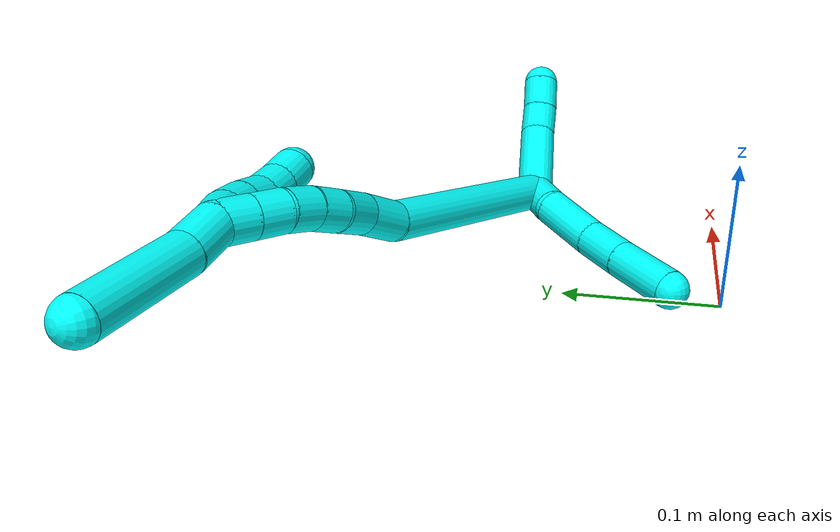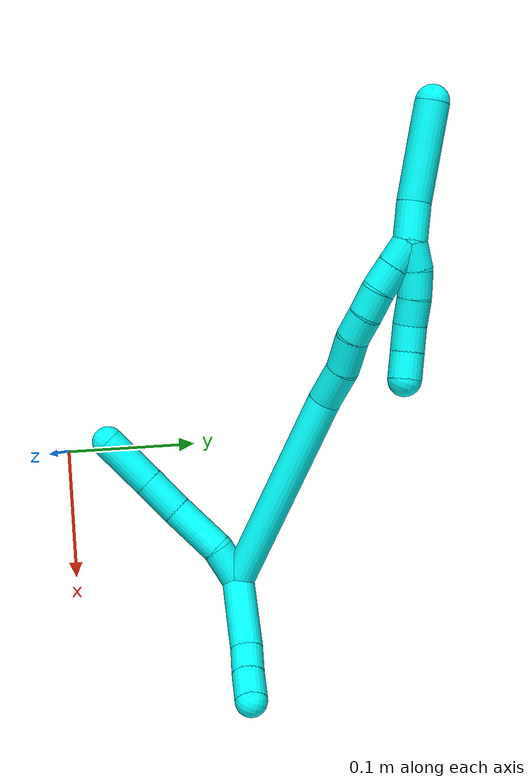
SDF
<sdf version="1.7">
 <world name="default">
  <model name="3">
   <static>0</static>
   <link name="3">
    <collision name="collision-cylinder-e_1_2_8">
     <pose>-0.011018 -0.004792 0.008565 0.510111 -0.843128 -0.232795</pose>
     <geometry><cylinder><radius>0.0125</radius><length>0.02951</length></cylinder></geometry>
     <surface>
      <friction><ode><mu>1.16</mu><mu2>1.16</mu2><slip1>0</slip1><slip2>0</slip2></ode></friction>
      <contact><ode><kp>1e+06</kp><kd>1</kd><max_vel>0</max_vel><min_depth>0.001</min_depth></ode></contact>
     </surface>
    </collision>
    <visual name="visual-cylinder-e_1_2_8">
     <pose>-0.011018 -0.004792 0.008565 0.510111 -0.843128 -0.232795</pose>
     <geometry><cylinder><radius>0.0125</radius><length>0.02951</length></cylinder></geometry>
     <material><ambient>0.003922 1 0.996078 1</ambient></material>
    </visual>
    <collision name="collision-cylinder-e_2_8_9">
     <pose>-0.041834 -0.015742 0.024216 0.715363 -1.128 -0.464306</pose>
     <geometry><cylinder><radius>0.0125</radius><length>0.043824</length></cylinder></geometry>
     <surface>
      <friction><ode><mu>1.16</mu><mu2>1.16</mu2><slip1>0</slip1><slip2>0</slip2></ode></friction>
      <contact><ode><kp>1e+06</kp><kd>1</kd><max_vel>0</max_vel><min_depth>0.001</min_depth></ode></contact>
     </surface>
    </collision>
    <visual name="visual-cylinder-e_2_8_9">
     <pose>-0.041834 -0.015742 0.024216 0.715363 -1.128 -0.464306</pose>
     <geometry><cylinder><radius>0.0125</radius><length>0.043824</length></cylinder></geometry>
     <material><ambient>0.003922 1 0.996078 1</ambient></material>
    </visual>
    <collision name="collision-cylinder-e_3_9_10">
     <pose>-0.074989 -0.027713 0.037498 0.753598 -1.00429 -0.427906</pose>
     <geometry><cylinder><radius>0.0125</radius><length>0.031659</length></cylinder></geometry>
     <surface>
      <friction><ode><mu>1.16</mu><mu2>1.16</mu2><slip1>0</slip1><slip2>0</slip2></ode></friction>
      <contact><ode><kp>1e+06</kp><kd>1</kd><max_vel>0</max_vel><min_depth>0.001</min_depth></ode></contact>
     </surface>
    </collision>
    <visual name="visual-cylinder-e_3_9_10">
     <pose>-0.074989 -0.027713 0.037498 0.753598 -1.00429 -0.427906</pose>
     <geometry><cylinder><radius>0.0125</radius><length>0.031659</length></cylinder></geometry>
     <material><ambient>0.003922 1 0.996078 1</ambient></material>
    </visual>
    <collision name="collision-cylinder-e_4_10_6">
     <pose>-0.107113 -0.042365 0.052417 0.791939 -0.986191 -0.441959</pose>
     <geometry><cylinder><radius>0.0125</radius><length>0.045008</length></cylinder></geometry>
     <surface>
      <friction><ode><mu>1.16</mu><mu2>1.16</mu2><slip1>0</slip1><slip2>0</slip2></ode></friction>
      <contact><ode><kp>1e+06</kp><kd>1</kd><max_vel>0</max_vel><min_depth>0.001</min_depth></ode></contact>
     </surface>
    </collision>
    <visual name="visual-cylinder-e_4_10_6">
     <pose>-0.107113 -0.042365 0.052417 0.791939 -0.986191 -0.441959</pose>
     <geometry><cylinder><radius>0.0125</radius><length>0.045008</length></cylinder></geometry>
     <material><ambient>0.003922 1 0.996078 1</ambient></material>
    </visual>
    <collision name="collision-cylinder-e_1_2_11">
     <pose>0.018737 -0.008293 -0.018655 2.72327 0.742558 2.14329</pose>
     <geometry><cylinder><radius>0.0125</radius><length>0.055421</length></cylinder></geometry>
     <surface>
      <friction><ode><mu>1.16</mu><mu2>1.16</mu2><slip1>0</slip1><slip2>0</slip2></ode></friction>
      <contact><ode><kp>1e+06</kp><kd>1</kd><max_vel>0</max_vel><min_depth>0.001</min_depth></ode></contact>
     </surface>
    </collision>
    <visual name="visual-cylinder-e_1_2_11">
     <pose>0.018737 -0.008293 -0.018655 2.72327 0.742558 2.14329</pose>
     <geometry><cylinder><radius>0.0125</radius><length>0.055421</length></cylinder></geometry>
     <material><ambient>0.003922 1 0.996078 1</ambient></material>
    </visual>
    <collision name="collision-cylinder-e_2_11_12">
     <pose>0.044776 -0.022267 -0.042975 2.3549 0.738422 1.50095</pose>
     <geometry><cylinder><radius>0.0125</radius><length>0.021696</length></cylinder></geometry>
     <surface>
      <friction><ode><mu>1.16</mu><mu2>1.16</mu2><slip1>0</slip1><slip2>0</slip2></ode></friction>
      <contact><ode><kp>1e+06</kp><kd>1</kd><max_vel>0</max_vel><min_depth>0.001</min_depth></ode></contact>
     </surface>
    </collision>
    <visual name="visual-cylinder-e_2_11_12">
     <pose>0.044776 -0.022267 -0.042975 2.3549 0.738422 1.50095</pose>
     <geometry><cylinder><radius>0.0125</radius><length>0.021696</length></cylinder></geometry>
     <material><ambient>0.003922 1 0.996078 1</ambient></material>
    </visual>
    <collision name="collision-cylinder-e_3_12_5">
     <pose>0.060221 -0.033959 -0.053976 2.29666 0.791867 1.49815</pose>
     <geometry><cylinder><radius>0.0125</radius><length>0.022883</length></cylinder></geometry>
     <surface>
      <friction><ode><mu>1.16</mu><mu2>1.16</mu2><slip1>0</slip1><slip2>0</slip2></ode></friction>
      <contact><ode><kp>1e+06</kp><kd>1</kd><max_vel>0</max_vel><min_depth>0.001</min_depth></ode></contact>
     </surface>
    </collision>
    <visual name="visual-cylinder-e_3_12_5">
     <pose>0.060221 -0.033959 -0.053976 2.29666 0.791867 1.49815</pose>
     <geometry><cylinder><radius>0.0125</radius><length>0.022883</length></cylinder></geometry>
     <material><ambient>0.003922 1 0.996078 1</ambient></material>
    </visual>
    <collision name="collision-cylinder-e_1_2_13">
     <pose>0.005587 -0.000111 0.080497 0.001375 0.069296 4.8e-05</pose>
     <geometry><cylinder><radius>0.0125</radius><length>0.161381</length></cylinder></geometry>
     <surface>
      <friction><ode><mu>1.16</mu><mu2>1.16</mu2><slip1>0</slip1><slip2>0</slip2></ode></friction>
      <contact><ode><kp>1e+06</kp><kd>1</kd><max_vel>0</max_vel><min_depth>0.001</min_depth></ode></contact>
     </surface>
    </collision>
    <visual name="visual-cylinder-e_1_2_13">
     <pose>0.005587 -0.000111 0.080497 0.001375 0.069296 4.8e-05</pose>
     <geometry><cylinder><radius>0.0125</radius><length>0.161381</length></cylinder></geometry>
     <material><ambient>0.003922 1 0.996078 1</ambient></material>
    </visual>
    <collision name="collision-cylinder-e_2_13_14">
     <pose>0.014938 -0.003526 0.175442 0.224833 0.24867 0.028217</pose>
     <geometry><cylinder><radius>0.0125</radius><length>0.030583</length></cylinder></geometry>
     <surface>
      <friction><ode><mu>1.16</mu><mu2>1.16</mu2><slip1>0</slip1><slip2>0</slip2></ode></friction>
      <contact><ode><kp>1e+06</kp><kd>1</kd><max_vel>0</max_vel><min_depth>0.001</min_depth></ode></contact>
     </surface>
    </collision>
    <visual name="visual-cylinder-e_2_13_14">
     <pose>0.014938 -0.003526 0.175442 0.224833 0.24867 0.028217</pose>
     <geometry><cylinder><radius>0.0125</radius><length>0.030583</length></cylinder></geometry>
     <material><ambient>0.003922 1 0.996078 1</ambient></material>
    </visual>
    <collision name="collision-cylinder-e_3_14_15">
     <pose>0.019455 -0.010572 0.202802 0.282062 0.05598 0.00795</pose>
     <geometry><cylinder><radius>0.0125</radius><length>0.02693</length></cylinder></geometry>
     <surface>
      <friction><ode><mu>1.16</mu><mu2>1.16</mu2><slip1>0</slip1><slip2>0</slip2></ode></friction>
      <contact><ode><kp>1e+06</kp><kd>1</kd><max_vel>0</max_vel><min_depth>0.001</min_depth></ode></contact>
     </surface>
    </collision>
    <visual name="visual-cylinder-e_3_14_15">
     <pose>0.019455 -0.010572 0.202802 0.282062 0.05598 0.00795</pose>
     <geometry><cylinder><radius>0.0125</radius><length>0.02693</length></cylinder></geometry>
     <material><ambient>0.003922 1 0.996078 1</ambient></material>
    </visual>
    <collision name="collision-cylinder-e_4_15_16">
     <pose>0.022278 -0.01579 0.225562 0.148802 0.205017 0.015335</pose>
     <geometry><cylinder><radius>0.0125</radius><length>0.020339</length></cylinder></geometry>
     <surface>
      <friction><ode><mu>1.16</mu><mu2>1.16</mu2><slip1>0</slip1><slip2>0</slip2></ode></friction>
      <contact><ode><kp>1e+06</kp><kd>1</kd><max_vel>0</max_vel><min_depth>0.001</min_depth></ode></contact>
     </surface>
    </collision>
    <visual name="visual-cylinder-e_4_15_16">
     <pose>0.022278 -0.01579 0.225562 0.148802 0.205017 0.015335</pose>
     <geometry><cylinder><radius>0.0125</radius><length>0.020339</length></cylinder></geometry>
     <material><ambient>0.003922 1 0.996078 1</ambient></material>
    </visual>
    <collision name="collision-cylinder-e_5_16_17">
     <pose>0.025563 -0.017749 0.245612 0.04728 0.118336 0.002801</pose>
     <geometry><cylinder><radius>0.0125</radius><length>0.020574</length></cylinder></geometry>
     <surface>
      <friction><ode><mu>1.16</mu><mu2>1.16</mu2><slip1>0</slip1><slip2>0</slip2></ode></friction>
      <contact><ode><kp>1e+06</kp><kd>1</kd><max_vel>0</max_vel><min_depth>0.001</min_depth></ode></contact>
     </surface>
    </collision>
    <visual name="visual-cylinder-e_5_16_17">
     <pose>0.025563 -0.017749 0.245612 0.04728 0.118336 0.002801</pose>
     <geometry><cylinder><radius>0.0125</radius><length>0.020574</length></cylinder></geometry>
     <material><ambient>0.003922 1 0.996078 1</ambient></material>
    </visual>
    <collision name="collision-cylinder-e_6_17_18">
     <pose>0.028284 -0.016835 0.265633 -0.141304 0.15075 -0.010689</pose>
     <geometry><cylinder><radius>0.0125</radius><length>0.020059</length></cylinder></geometry>
     <surface>
      <friction><ode><mu>1.16</mu><mu2>1.16</mu2><slip1>0</slip1><slip2>0</slip2></ode></friction>
      <contact><ode><kp>1e+06</kp><kd>1</kd><max_vel>0</max_vel><min_depth>0.001</min_depth></ode></contact>
     </surface>
    </collision>
    <visual name="visual-cylinder-e_6_17_18">
     <pose>0.028284 -0.016835 0.265633 -0.141304 0.15075 -0.010689</pose>
     <geometry><cylinder><radius>0.0125</radius><length>0.020059</length></cylinder></geometry>
     <material><ambient>0.003922 1 0.996078 1</ambient></material>
    </visual>
    <collision name="collision-cylinder-e_7_18_1">
     <pose>0.031446 -0.013967 0.28527 -0.148758 0.165295 -0.012345</pose>
     <geometry><cylinder><radius>0.0125</radius><length>0.020133</length></cylinder></geometry>
     <surface>
      <friction><ode><mu>1.16</mu><mu2>1.16</mu2><slip1>0</slip1><slip2>0</slip2></ode></friction>
      <contact><ode><kp>1e+06</kp><kd>1</kd><max_vel>0</max_vel><min_depth>0.001</min_depth></ode></contact>
     </surface>
    </collision>
    <visual name="visual-cylinder-e_7_18_1">
     <pose>0.031446 -0.013967 0.28527 -0.148758 0.165295 -0.012345</pose>
     <geometry><cylinder><radius>0.0125</radius><length>0.020133</length></cylinder></geometry>
     <material><ambient>0.003922 1 0.996078 1</ambient></material>
    </visual>
    <collision name="collision-cylinder-e_1_1_19">
     <pose>0.027941 -0.011183 0.308417 -0.098147 -0.367876 0.018273</pose>
     <geometry><cylinder><radius>0.0125</radius><length>0.028705</length></cylinder></geometry>
     <surface>
      <friction><ode><mu>1.16</mu><mu2>1.16</mu2><slip1>0</slip1><slip2>0</slip2></ode></friction>
      <contact><ode><kp>1e+06</kp><kd>1</kd><max_vel>0</max_vel><min_depth>0.001</min_depth></ode></contact>
     </surface>
    </collision>
    <visual name="visual-cylinder-e_1_1_19">
     <pose>0.027941 -0.011183 0.308417 -0.098147 -0.367876 0.018273</pose>
     <geometry><cylinder><radius>0.0125</radius><length>0.028705</length></cylinder></geometry>
     <material><ambient>0.003922 1 0.996078 1</ambient></material>
    </visual>
    <collision name="collision-cylinder-e_2_19_4">
     <pose>0.014358 -0.009464 0.356381 -0.011746 -0.238498 0.001407</pose>
     <geometry><cylinder><radius>0.0125</radius><length>0.071295</length></cylinder></geometry>
     <surface>
      <friction><ode><mu>1.16</mu><mu2>1.16</mu2><slip1>0</slip1><slip2>0</slip2></ode></friction>
      <contact><ode><kp>1e+06</kp><kd>1</kd><max_vel>0</max_vel><min_depth>0.001</min_depth></ode></contact>
     </surface>
    </collision>
    <visual name="visual-cylinder-e_2_19_4">
     <pose>0.014358 -0.009464 0.356381 -0.011746 -0.238498 0.001407</pose>
     <geometry><cylinder><radius>0.0125</radius><length>0.071295</length></cylinder></geometry>
     <material><ambient>0.003922 1 0.996078 1</ambient></material>
    </visual>
    <collision name="collision-cylinder-e_1_1_20">
     <pose>0.037845 -0.009489 0.286815 -2.79307 0.494113 -1.92279</pose>
     <geometry><cylinder><radius>0.0125</radius><length>0.02</length></cylinder></geometry>
     <surface>
      <friction><ode><mu>1.16</mu><mu2>1.16</mu2><slip1>0</slip1><slip2>0</slip2></ode></friction>
      <contact><ode><kp>1e+06</kp><kd>1</kd><max_vel>0</max_vel><min_depth>0.001</min_depth></ode></contact>
     </surface>
    </collision>
    <visual name="visual-cylinder-e_1_1_20">
     <pose>0.037845 -0.009489 0.286815 -2.79307 0.494113 -1.92279</pose>
     <geometry><cylinder><radius>0.0125</radius><length>0.02</length></cylinder></geometry>
     <material><ambient>0.003922 1 0.996078 1</ambient></material>
    </visual>
    <collision name="collision-cylinder-e_2_20_21">
     <pose>0.045504 -0.004766 0.26913 -2.96126 0.295873 -2.05094</pose>
     <geometry><cylinder><radius>0.0125</radius><length>0.02</length></cylinder></geometry>
     <surface>
      <friction><ode><mu>1.16</mu><mu2>1.16</mu2><slip1>0</slip1><slip2>0</slip2></ode></friction>
      <contact><ode><kp>1e+06</kp><kd>1</kd><max_vel>0</max_vel><min_depth>0.001</min_depth></ode></contact>
     </surface>
    </collision>
    <visual name="visual-cylinder-e_2_20_21">
     <pose>0.045504 -0.004766 0.26913 -2.96126 0.295873 -2.05094</pose>
     <geometry><cylinder><radius>0.0125</radius><length>0.02</length></cylinder></geometry>
     <material><ambient>0.003922 1 0.996078 1</ambient></material>
    </visual>
    <collision name="collision-cylinder-e_3_21_22">
     <pose>0.050147 -0.001501 0.249993 -2.98364 0.173655 -1.66588</pose>
     <geometry><cylinder><radius>0.0125</radius><length>0.02</length></cylinder></geometry>
     <surface>
      <friction><ode><mu>1.16</mu><mu2>1.16</mu2><slip1>0</slip1><slip2>0</slip2></ode></friction>
      <contact><ode><kp>1e+06</kp><kd>1</kd><max_vel>0</max_vel><min_depth>0.001</min_depth></ode></contact>
     </surface>
    </collision>
    <visual name="visual-cylinder-e_3_21_22">
     <pose>0.050147 -0.001501 0.249993 -2.98364 0.173655 -1.66588</pose>
     <geometry><cylinder><radius>0.0125</radius><length>0.02</length></cylinder></geometry>
     <material><ambient>0.003922 1 0.996078 1</ambient></material>
    </visual>
    <collision name="collision-cylinder-e_4_22_23">
     <pose>0.055062 0.000112 0.230787 -3.13479 0.324396 -3.10005</pose>
     <geometry><cylinder><radius>0.0125</radius><length>0.02</length></cylinder></geometry>
     <surface>
      <friction><ode><mu>1.16</mu><mu2>1.16</mu2><slip1>0</slip1><slip2>0</slip2></ode></friction>
      <contact><ode><kp>1e+06</kp><kd>1</kd><max_vel>0</max_vel><min_depth>0.001</min_depth></ode></contact>
     </surface>
    </collision>
    <visual name="visual-cylinder-e_4_22_23">
     <pose>0.055062 0.000112 0.230787 -3.13479 0.324396 -3.10005</pose>
     <geometry><cylinder><radius>0.0125</radius><length>0.02</length></cylinder></geometry>
     <material><ambient>0.003922 1 0.996078 1</ambient></material>
    </visual>
    <collision name="collision-cylinder-e_5_23_3">
     <pose>0.061861 -0.000679 0.212023 3.04969 0.36944 2.65898</pose>
     <geometry><cylinder><radius>0.0125</radius><length>0.02</length></cylinder></geometry>
     <surface>
      <friction><ode><mu>1.16</mu><mu2>1.16</mu2><slip1>0</slip1><slip2>0</slip2></ode></friction>
      <contact><ode><kp>1e+06</kp><kd>1</kd><max_vel>0</max_vel><min_depth>0.001</min_depth></ode></contact>
     </surface>
    </collision>
    <visual name="visual-cylinder-e_5_23_3">
     <pose>0.061861 -0.000679 0.212023 3.04969 0.36944 2.65898</pose>
     <geometry><cylinder><radius>0.0125</radius><length>0.02</length></cylinder></geometry>
     <material><ambient>0.003922 1 0.996078 1</ambient></material>
    </visual>
    <collision name="collision-sphere-3">
     <pose>0.065472 -0.001535 0.202737 0 -0 0</pose>
     <geometry><sphere><radius>0.0125</radius></sphere></geometry>
     <surface>
      <friction><ode><mu>1.16</mu><mu2>1.16</mu2><slip1>0</slip1><slip2>0</slip2></ode></friction>
      <contact><ode><kp>1e+06</kp><kd>1</kd><max_vel>0</max_vel><min_depth>0.001</min_depth></ode></contact>
     </surface>
    </collision>
    <visual name="visual-sphere-3">
     <pose>0.065472 -0.001535 0.202737 0 -0 0</pose>
     <geometry><sphere><radius>0.0125</radius></sphere></geometry>
     <material><ambient>0.003922 1 0.996078 1</ambient></material>
    </visual>
    <collision name="collision-sphere-23">
     <pose>0.05825 0.000177 0.221309 0 -0 0</pose>
     <geometry><sphere><radius>0.0125</radius></sphere></geometry>
     <surface>
      <friction><ode><mu>1.16</mu><mu2>1.16</mu2><slip1>0</slip1><slip2>0</slip2></ode></friction>
      <contact><ode><kp>1e+06</kp><kd>1</kd><max_vel>0</max_vel><min_depth>0.001</min_depth></ode></contact>
     </surface>
    </collision>
    <visual name="visual-sphere-23">
     <pose>0.05825 0.000177 0.221309 0 -0 0</pose>
     <geometry><sphere><radius>0.0125</radius></sphere></geometry>
     <material><ambient>0.003922 1 0.996078 1</ambient></material>
    </visual>
    <collision name="collision-sphere-22">
     <pose>0.051875 4.8e-05 0.240266 0 -0 0</pose>
     <geometry><sphere><radius>0.0125</radius></sphere></geometry>
     <surface>
      <friction><ode><mu>1.16</mu><mu2>1.16</mu2><slip1>0</slip1><slip2>0</slip2></ode></friction>
      <contact><ode><kp>1e+06</kp><kd>1</kd><max_vel>0</max_vel><min_depth>0.001</min_depth></ode></contact>
     </surface>
    </collision>
    <visual name="visual-sphere-22">
     <pose>0.051875 4.8e-05 0.240266 0 -0 0</pose>
     <geometry><sphere><radius>0.0125</radius></sphere></geometry>
     <material><ambient>0.003922 1 0.996078 1</ambient></material>
    </visual>
    <collision name="collision-sphere-21">
     <pose>0.048419 -0.003051 0.25972 0 -0 0</pose>
     <geometry><sphere><radius>0.0125</radius></sphere></geometry>
     <surface>
      <friction><ode><mu>1.16</mu><mu2>1.16</mu2><slip1>0</slip1><slip2>0</slip2></ode></friction>
      <contact><ode><kp>1e+06</kp><kd>1</kd><max_vel>0</max_vel><min_depth>0.001</min_depth></ode></contact>
     </surface>
    </collision>
    <visual name="visual-sphere-21">
     <pose>0.048419 -0.003051 0.25972 0 -0 0</pose>
     <geometry><sphere><radius>0.0125</radius></sphere></geometry>
     <material><ambient>0.003922 1 0.996078 1</ambient></material>
    </visual>
    <collision name="collision-sphere-20">
     <pose>0.042588 -0.006482 0.27854 0 -0 0</pose>
     <geometry><sphere><radius>0.0125</radius></sphere></geometry>
     <surface>
      <friction><ode><mu>1.16</mu><mu2>1.16</mu2><slip1>0</slip1><slip2>0</slip2></ode></friction>
      <contact><ode><kp>1e+06</kp><kd>1</kd><max_vel>0</max_vel><min_depth>0.001</min_depth></ode></contact>
     </surface>
    </collision>
    <visual name="visual-sphere-20">
     <pose>0.042588 -0.006482 0.27854 0 -0 0</pose>
     <geometry><sphere><radius>0.0125</radius></sphere></geometry>
     <material><ambient>0.003922 1 0.996078 1</ambient></material>
    </visual>
    <collision name="collision-sphere-4">
     <pose>0.005937 -0.009057 0.391017 0 -0 0</pose>
     <geometry><sphere><radius>0.0125</radius></sphere></geometry>
     <surface>
      <friction><ode><mu>1.16</mu><mu2>1.16</mu2><slip1>0</slip1><slip2>0</slip2></ode></friction>
      <contact><ode><kp>1e+06</kp><kd>1</kd><max_vel>0</max_vel><min_depth>0.001</min_depth></ode></contact>
     </surface>
    </collision>
    <visual name="visual-sphere-4">
     <pose>0.005937 -0.009057 0.391017 0 -0 0</pose>
     <geometry><sphere><radius>0.0125</radius></sphere></geometry>
     <material><ambient>0.003922 1 0.996078 1</ambient></material>
    </visual>
    <collision name="collision-sphere-11">
     <pose>0.037474 -0.016587 -0.03731 0 -0 0</pose>
     <geometry><sphere><radius>0.0125</radius></sphere></geometry>
     <surface>
      <friction><ode><mu>1.16</mu><mu2>1.16</mu2><slip1>0</slip1><slip2>0</slip2></ode></friction>
      <contact><ode><kp>1e+06</kp><kd>1</kd><max_vel>0</max_vel><min_depth>0.001</min_depth></ode></contact>
     </surface>
    </collision>
    <visual name="visual-sphere-11">
     <pose>0.037474 -0.016587 -0.03731 0 -0 0</pose>
     <geometry><sphere><radius>0.0125</radius></sphere></geometry>
     <material><ambient>0.003922 1 0.996078 1</ambient></material>
    </visual>
    <collision name="collision-sphere-6">
     <pose>-0.125879 -0.051204 0.061141 0 -0 0</pose>
     <geometry><sphere><radius>0.0125</radius></sphere></geometry>
     <surface>
      <friction><ode><mu>1.16</mu><mu2>1.16</mu2><slip1>0</slip1><slip2>0</slip2></ode></friction>
      <contact><ode><kp>1e+06</kp><kd>1</kd><max_vel>0</max_vel><min_depth>0.001</min_depth></ode></contact>
     </surface>
    </collision>
    <visual name="visual-sphere-6">
     <pose>-0.125879 -0.051204 0.061141 0 -0 0</pose>
     <geometry><sphere><radius>0.0125</radius></sphere></geometry>
     <material><ambient>0.003922 1 0.996078 1</ambient></material>
    </visual>
    <collision name="collision-sphere-10">
     <pose>-0.088346 -0.033526 0.043693 0 -0 0</pose>
     <geometry><sphere><radius>0.0125</radius></sphere></geometry>
     <surface>
      <friction><ode><mu>1.16</mu><mu2>1.16</mu2><slip1>0</slip1><slip2>0</slip2></ode></friction>
      <contact><ode><kp>1e+06</kp><kd>1</kd><max_vel>0</max_vel><min_depth>0.001</min_depth></ode></contact>
     </surface>
    </collision>
    <visual name="visual-sphere-10">
     <pose>-0.088346 -0.033526 0.043693 0 -0 0</pose>
     <geometry><sphere><radius>0.0125</radius></sphere></geometry>
     <material><ambient>0.003922 1 0.996078 1</ambient></material>
    </visual>
    <collision name="collision-sphere-9">
     <pose>-0.061633 -0.021899 0.031303 0 -0 0</pose>
     <geometry><sphere><radius>0.0125</radius></sphere></geometry>
     <surface>
      <friction><ode><mu>1.16</mu><mu2>1.16</mu2><slip1>0</slip1><slip2>0</slip2></ode></friction>
      <contact><ode><kp>1e+06</kp><kd>1</kd><max_vel>0</max_vel><min_depth>0.001</min_depth></ode></contact>
     </surface>
    </collision>
    <visual name="visual-sphere-9">
     <pose>-0.061633 -0.021899 0.031303 0 -0 0</pose>
     <geometry><sphere><radius>0.0125</radius></sphere></geometry>
     <material><ambient>0.003922 1 0.996078 1</ambient></material>
    </visual>
    <collision name="collision-sphere-2">
     <geometry><sphere><radius>0.0125</radius></sphere></geometry>
     <surface>
      <friction><ode><mu>1.16</mu><mu2>1.16</mu2><slip1>0</slip1><slip2>0</slip2></ode></friction>
      <contact><ode><kp>1e+06</kp><kd>1</kd><max_vel>0</max_vel><min_depth>0.001</min_depth></ode></contact>
     </surface>
    </collision>
    <visual name="visual-sphere-2">
     <geometry><sphere><radius>0.0125</radius></sphere></geometry>
     <material><ambient>0.003922 1 0.996078 1</ambient></material>
    </visual>
    <collision name="collision-sphere-19">
     <pose>0.02278 -0.009871 0.321745 0 -0 0</pose>
     <geometry><sphere><radius>0.0125</radius></sphere></geometry>
     <surface>
      <friction><ode><mu>1.16</mu><mu2>1.16</mu2><slip1>0</slip1><slip2>0</slip2></ode></friction>
      <contact><ode><kp>1e+06</kp><kd>1</kd><max_vel>0</max_vel><min_depth>0.001</min_depth></ode></contact>
     </surface>
    </collision>
    <visual name="visual-sphere-19">
     <pose>0.02278 -0.009871 0.321745 0 -0 0</pose>
     <geometry><sphere><radius>0.0125</radius></sphere></geometry>
     <material><ambient>0.003922 1 0.996078 1</ambient></material>
    </visual>
    <collision name="collision-sphere-8">
     <pose>-0.022036 -0.009584 0.017129 0 -0 0</pose>
     <geometry><sphere><radius>0.0125</radius></sphere></geometry>
     <surface>
      <friction><ode><mu>1.16</mu><mu2>1.16</mu2><slip1>0</slip1><slip2>0</slip2></ode></friction>
      <contact><ode><kp>1e+06</kp><kd>1</kd><max_vel>0</max_vel><min_depth>0.001</min_depth></ode></contact>
     </surface>
    </collision>
    <visual name="visual-sphere-8">
     <pose>-0.022036 -0.009584 0.017129 0 -0 0</pose>
     <geometry><sphere><radius>0.0125</radius></sphere></geometry>
     <material><ambient>0.003922 1 0.996078 1</ambient></material>
    </visual>
    <collision name="collision-sphere-12">
     <pose>0.052078 -0.027947 -0.048641 0 -0 0</pose>
     <geometry><sphere><radius>0.0125</radius></sphere></geometry>
     <surface>
      <friction><ode><mu>1.16</mu><mu2>1.16</mu2><slip1>0</slip1><slip2>0</slip2></ode></friction>
      <contact><ode><kp>1e+06</kp><kd>1</kd><max_vel>0</max_vel><min_depth>0.001</min_depth></ode></contact>
     </surface>
    </collision>
    <visual name="visual-sphere-12">
     <pose>0.052078 -0.027947 -0.048641 0 -0 0</pose>
     <geometry><sphere><radius>0.0125</radius></sphere></geometry>
     <material><ambient>0.003922 1 0.996078 1</ambient></material>
    </visual>
    <collision name="collision-sphere-5">
     <pose>0.068363 -0.03997 -0.059312 0 -0 0</pose>
     <geometry><sphere><radius>0.0125</radius></sphere></geometry>
     <surface>
      <friction><ode><mu>1.16</mu><mu2>1.16</mu2><slip1>0</slip1><slip2>0</slip2></ode></friction>
      <contact><ode><kp>1e+06</kp><kd>1</kd><max_vel>0</max_vel><min_depth>0.001</min_depth></ode></contact>
     </surface>
    </collision>
    <visual name="visual-sphere-5">
     <pose>0.068363 -0.03997 -0.059312 0 -0 0</pose>
     <geometry><sphere><radius>0.0125</radius></sphere></geometry>
     <material><ambient>0.003922 1 0.996078 1</ambient></material>
    </visual>
    <collision name="collision-sphere-13">
     <pose>0.011174 -0.000221 0.160993 0 -0 0</pose>
     <geometry><sphere><radius>0.0125</radius></sphere></geometry>
     <surface>
      <friction><ode><mu>1.16</mu><mu2>1.16</mu2><slip1>0</slip1><slip2>0</slip2></ode></friction>
      <contact><ode><kp>1e+06</kp><kd>1</kd><max_vel>0</max_vel><min_depth>0.001</min_depth></ode></contact>
     </surface>
    </collision>
    <visual name="visual-sphere-13">
     <pose>0.011174 -0.000221 0.160993 0 -0 0</pose>
     <geometry><sphere><radius>0.0125</radius></sphere></geometry>
     <material><ambient>0.003922 1 0.996078 1</ambient></material>
    </visual>
    <collision name="collision-sphere-14">
     <pose>0.018701 -0.00683 0.18989 0 -0 0</pose>
     <geometry><sphere><radius>0.0125</radius></sphere></geometry>
     <surface>
      <friction><ode><mu>1.16</mu><mu2>1.16</mu2><slip1>0</slip1><slip2>0</slip2></ode></friction>
      <contact><ode><kp>1e+06</kp><kd>1</kd><max_vel>0</max_vel><min_depth>0.001</min_depth></ode></contact>
     </surface>
    </collision>
    <visual name="visual-sphere-14">
     <pose>0.018701 -0.00683 0.18989 0 -0 0</pose>
     <geometry><sphere><radius>0.0125</radius></sphere></geometry>
     <material><ambient>0.003922 1 0.996078 1</ambient></material>
    </visual>
    <collision name="collision-sphere-15">
     <pose>0.020208 -0.014314 0.215715 0 -0 0</pose>
     <geometry><sphere><radius>0.0125</radius></sphere></geometry>
     <surface>
      <friction><ode><mu>1.16</mu><mu2>1.16</mu2><slip1>0</slip1><slip2>0</slip2></ode></friction>
      <contact><ode><kp>1e+06</kp><kd>1</kd><max_vel>0</max_vel><min_depth>0.001</min_depth></ode></contact>
     </surface>
    </collision>
    <visual name="visual-sphere-15">
     <pose>0.020208 -0.014314 0.215715 0 -0 0</pose>
     <geometry><sphere><radius>0.0125</radius></sphere></geometry>
     <material><ambient>0.003922 1 0.996078 1</ambient></material>
    </visual>
    <collision name="collision-sphere-16">
     <pose>0.024349 -0.017266 0.235408 0 -0 0</pose>
     <geometry><sphere><radius>0.0125</radius></sphere></geometry>
     <surface>
      <friction><ode><mu>1.16</mu><mu2>1.16</mu2><slip1>0</slip1><slip2>0</slip2></ode></friction>
      <contact><ode><kp>1e+06</kp><kd>1</kd><max_vel>0</max_vel><min_depth>0.001</min_depth></ode></contact>
     </surface>
    </collision>
    <visual name="visual-sphere-16">
     <pose>0.024349 -0.017266 0.235408 0 -0 0</pose>
     <geometry><sphere><radius>0.0125</radius></sphere></geometry>
     <material><ambient>0.003922 1 0.996078 1</ambient></material>
    </visual>
    <collision name="collision-sphere-17">
     <pose>0.026778 -0.018232 0.255816 0 -0 0</pose>
     <geometry><sphere><radius>0.0125</radius></sphere></geometry>
     <surface>
      <friction><ode><mu>1.16</mu><mu2>1.16</mu2><slip1>0</slip1><slip2>0</slip2></ode></friction>
      <contact><ode><kp>1e+06</kp><kd>1</kd><max_vel>0</max_vel><min_depth>0.001</min_depth></ode></contact>
     </surface>
    </collision>
    <visual name="visual-sphere-17">
     <pose>0.026778 -0.018232 0.255816 0 -0 0</pose>
     <geometry><sphere><radius>0.0125</radius></sphere></geometry>
     <material><ambient>0.003922 1 0.996078 1</ambient></material>
    </visual>
    <collision name="collision-sphere-18">
     <pose>0.02979 -0.015439 0.27545 0 -0 0</pose>
     <geometry><sphere><radius>0.0125</radius></sphere></geometry>
     <surface>
      <friction><ode><mu>1.16</mu><mu2>1.16</mu2><slip1>0</slip1><slip2>0</slip2></ode></friction>
      <contact><ode><kp>1e+06</kp><kd>1</kd><max_vel>0</max_vel><min_depth>0.001</min_depth></ode></contact>
     </surface>
    </collision>
    <visual name="visual-sphere-18">
     <pose>0.02979 -0.015439 0.27545 0 -0 0</pose>
     <geometry><sphere><radius>0.0125</radius></sphere></geometry>
     <material><ambient>0.003922 1 0.996078 1</ambient></material>
    </visual>
    <collision name="collision-sphere-1">
     <pose>0.033103 -0.012495 0.295089 0 -0 0</pose>
     <geometry><sphere><radius>0.0125</radius></sphere></geometry>
     <surface>
      <friction><ode><mu>1.16</mu><mu2>1.16</mu2><slip1>0</slip1><slip2>0</slip2></ode></friction>
      <contact><ode><kp>1e+06</kp><kd>1</kd><max_vel>0</max_vel><min_depth>0.001</min_depth></ode></contact>
     </surface>
    </collision>
    <visual name="visual-sphere-1">
     <pose>0.033103 -0.012495 0.295089 0 -0 0</pose>
     <geometry><sphere><radius>0.0125</radius></sphere></geometry>
     <material><ambient>0.003922 1 0.996078 1</ambient></material>
    </visual>
    <inertial>
     <pose>0.006574 -0.011164 0.140568 0 -0 0</pose>
     <mass>0.75</mass>
     <inertia>
      <ixx>0.000407</ixx>
      <ixy>0</ixy>
      <ixz>0</ixz>
      <iyy>0.000443</iyy>
      <iyz>0</iyz>
      <izz>2.7e-05</izz>
     </inertia>
    </inertial>
   </link>
   <pose>0.10887 0.128354 0.014209 -1.28389 -0.488282 0.994671</pose>
  </model>
 </world>
</sdf>
